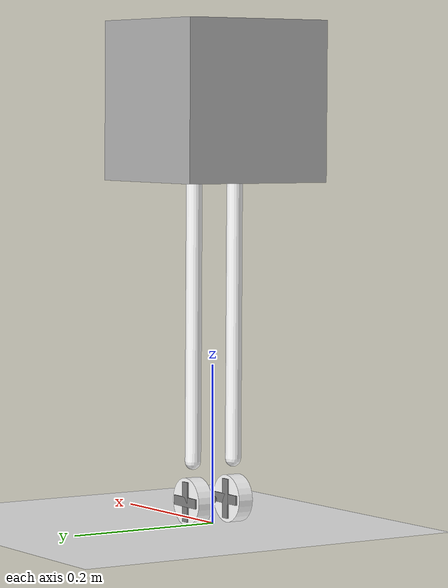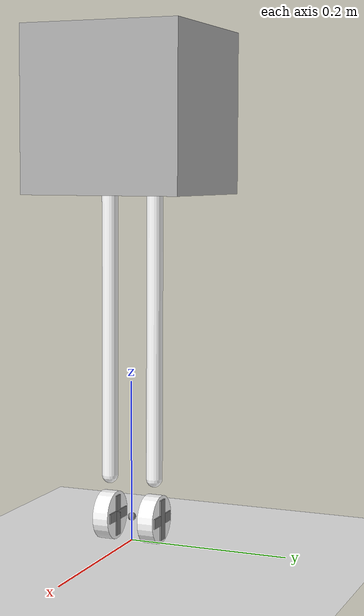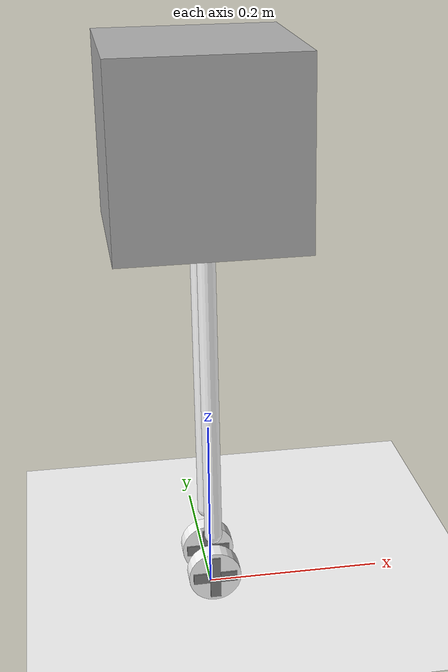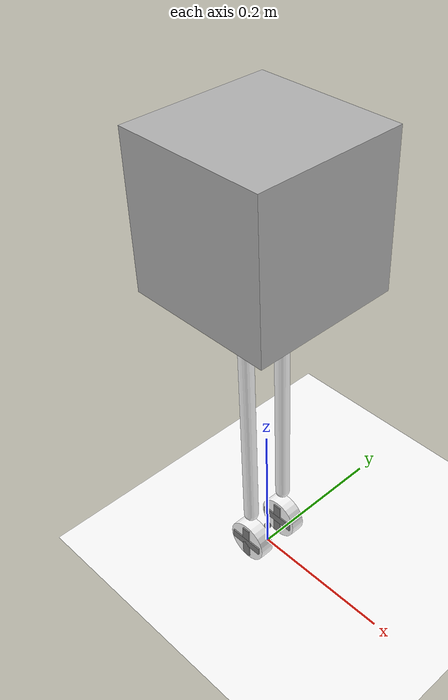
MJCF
<mujoco model="MuJoCo Model">
  <!-- This file specifies things in degrees. The code/simulator uses radians -->
  <compiler angle="radian"/>
  <option timestep="0.001" integrator="RK4"/>
  <visual>
    <headlight ambient="1 1 1"/>
  </visual>
  <default class="main">
    <joint damping="0.01"/>
    <geom rgba="1 1 1 1"/>
    <default class="wheel">
      <geom size="0.03 0.01 0" type="cylinder"/>
    </default>
    <default class="decor">
      <site type="box"/>
    </default>
  </default>
  <asset>
    <texture type="2d" name="grid" builtin="checker" rgb1="0.1 0.2 0.3" rgb2="0.2 0.3 0.4" width="512" height="512"/>
    <material name="grid" texture="grid" texuniform="true" reflectance="0.05"/>
    <mesh name="chasis" vertex="9 2 0 -10 10 10 9 -2 0 10 3 -10 10 -3 -10 -8 10 -10 -10 -10 10 -8 -10 -10 -5 0 20" scale="0.01 0.006 0.0015"/>
  </asset>
  <worldbody>
    <geom size="50 50 0.01" type="plane" material="grid"/>
    <body name="car" pos="0 0 0.03" quat="0.99999 0 -0.00436331 0">
      <joint type="free" limited="false" actuatorfrclimited="false" damping="0"/>
      <site name="wheelbase" pos="0 0 0"/>
      <body name="left wheel" pos="0 0.03 0" quat="0.707107 -0.707107 0 0">
        <joint name="left" pos="0 0 0" axis="0 0 1"/>
        <geom class="wheel" mass="0.01"/>
        <site class="decor" pos="0 0 0" size="0.006 0.025 0.012"/>
        <site class="decor" pos="0 0 0" size="0.025 0.006 0.012"/>
      </body>
      <body name="right wheel" pos="0 -0.03 0" quat="0.707107 -0.707107 0 0">
        <joint name="right" pos="0 0 0" axis="0 0 1"/>
        <geom class="wheel" mass="0.01"/>
        <site name="torque_sensor_mnt" pos="0 0 0"/>
        <site class="decor" pos="0 0 0" size="0.006 0.025 0.012"/>
        <site class="decor" pos="0 0 0" size="0.025 0.006 0.012"/>
      </body>
      <body name="beam" pos="0 0 0.4">
        <geom name="legL" size="0.01 0.25" pos="0 0.03 -0.1" type="capsule" mass="0.01"/>
        <geom name="legR" size="0.01 0.25" pos="0 -0.03 -0.1" type="capsule" mass="0.01"/>
        <body name="ballbody" pos="0 0 0.1">
          <geom name="ballgeom" size="0.1 0.1 0.1" type="box" mass="3" rgba="0.7 0.7 0.7 1"/>
          <site name="accelerometer_center" pos="0 0 0" rgba="0 1 0 1"/>
        </body>
      </body>
    </body>
  </worldbody>
  <tendon>
    <fixed name="forward">
      <joint joint="left" coef="1"/>
      <joint joint="right" coef="1"/>
    </fixed>
    <fixed name="turn">
      <joint joint="left" coef="-0.5"/>
      <joint joint="right" coef="0.5"/>
    </fixed>
  </tendon>
  <actuator>
    <general name="forward" tendon="forward" ctrlrange="-100 100"/>
  </actuator>
  <sensor>
    <accelerometer site="accelerometer_center" name="accelerometer"/>
    <framepos objtype="site" objname="wheelbase" name="base_position"/>
    <framelinvel objtype="site" objname="wheelbase" name="base_velocity"/>
    <frameangvel objtype="site" objname="accelerometer_center" name="base_ang_velocity"/>
    <torque site="torque_sensor_mnt" name="wheel_torque"/>
    <jointvel joint="right" name="wheel_vel"/>
  </sensor>
</mujoco>
